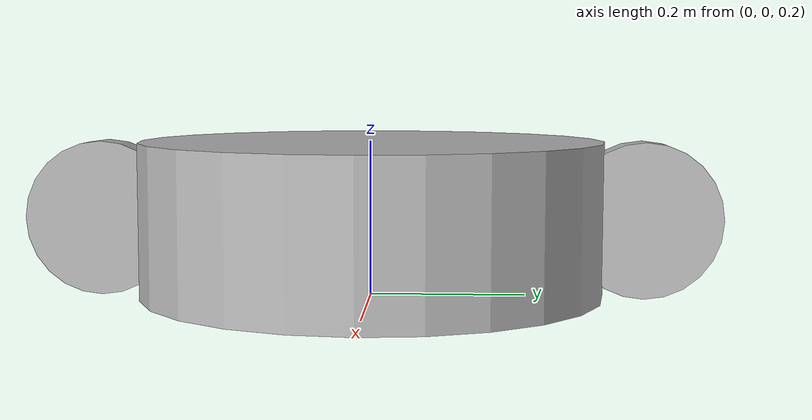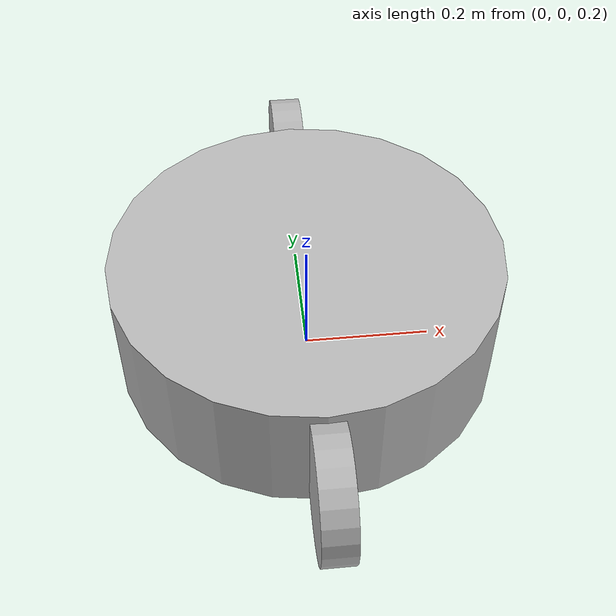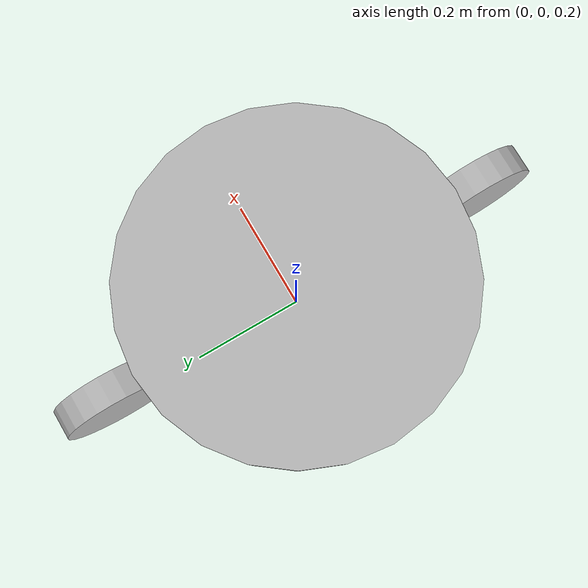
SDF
<?xml version="1.0" ?>
<sdf version="1.6">
  <model name="cleaner_robot">
    <static>false</static>
    <pose>0 0 0.3 0 0 0</pose>

    <!-- BASE -->
    <link name="base_link">

      <inertial>
        <mass>5.0</mass>
        <inertia>
          <ixx>0.1</ixx>
          <iyy>0.1</iyy>
          <izz>0.1</izz>
          <ixy>0</ixy>
          <ixz>0</ixz>
          <iyz>0</iyz>
        </inertia>
      </inertial>

      <collision name="base_collision">
        <geometry>
          <cylinder>
            <radius>0.3</radius>
            <length>0.2</length>
          </cylinder>
        </geometry>
      </collision>

      <visual name="base_visual">
        <geometry>
          <cylinder>
            <radius>0.3</radius>
            <length>0.2</length>
          </cylinder>
        </geometry>
      </visual>

    </link>

    <!-- LEFT WHEEL -->
    <link name="left_wheel">

      <pose>0 0.35 0 0 1.57 0</pose>

      <inertial>
        <mass>1.0</mass>
        <inertia>
          <ixx>0.01</ixx>
          <iyy>0.01</iyy>
          <izz>0.01</izz>
          <ixy>0</ixy>
          <ixz>0</ixz>
          <iyz>0</iyz>
        </inertia>
      </inertial>

      <collision name="left_collision">
        <geometry>
          <cylinder>
            <radius>0.1</radius>
            <length>0.05</length>
          </cylinder>
        </geometry>
      </collision>

      <visual name="left_visual">
        <geometry>
          <cylinder>
            <radius>0.1</radius>
            <length>0.05</length>
          </cylinder>
        </geometry>
      </visual>

    </link>

    <!-- RIGHT WHEEL -->
    <link name="right_wheel">

      <pose>0 -0.35 0 0 1.57 0</pose>

      <inertial>
        <mass>1.0</mass>
        <inertia>
          <ixx>0.01</ixx>
          <iyy>0.01</iyy>
          <izz>0.01</izz>
          <ixy>0</ixy>
          <ixz>0</ixz>
          <iyz>0</iyz>
        </inertia>
      </inertial>

      <collision name="right_collision">
        <geometry>
          <cylinder>
            <radius>0.1</radius>
            <length>0.05</length>
          </cylinder>
        </geometry>
      </collision>

      <visual name="right_visual">
        <geometry>
          <cylinder>
            <radius>0.1</radius>
            <length>0.05</length>
          </cylinder>
        </geometry>
      </visual>

    </link>

    <!-- JOINTS -->

    <joint name="left_wheel_joint" type="revolute">
      <parent>base_link</parent>
      <child>left_wheel</child>

      <axis>
        <xyz>0 1 0</xyz>
        <limit>
          <lower>-1000</lower>
          <upper>1000</upper>
        </limit>
      </axis>
    </joint>

    <joint name="right_wheel_joint" type="revolute">
      <parent>base_link</parent>
      <child>right_wheel</child>

      <axis>
        <xyz>0 1 0</xyz>
        <limit>
          <lower>-1000</lower>
          <upper>1000</upper>
        </limit>
      </axis>
    </joint>

    <!-- DIFF DRIVE PLUGIN -->

    <plugin name="cleaner_diff_drive" filename="libgazebo_ros_diff_drive.so">
      <ros>
        <namespace>/cleaner</namespace>
      </ros>

      <left_joint>left_wheel_joint</left_joint>
      <right_joint>right_wheel_joint</right_joint>

      <wheel_separation>0.7</wheel_separation>
      <wheel_diameter>0.2</wheel_diameter>

      <command_topic>cmd_vel</command_topic>

      <odometry_topic>odom</odometry_topic>

    </plugin>

  </model>
</sdf>
